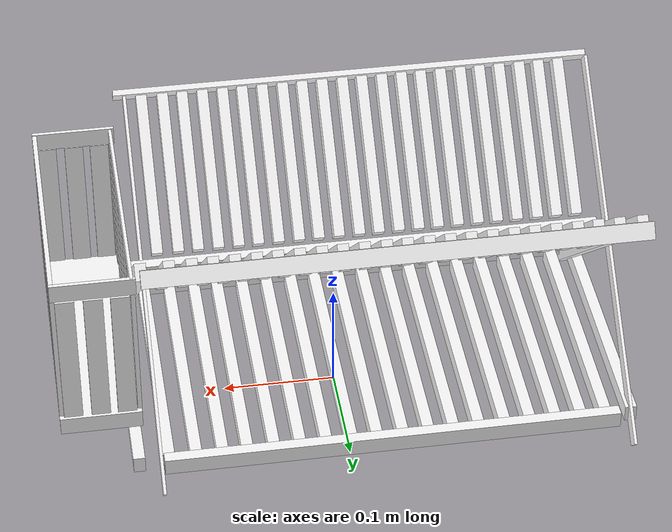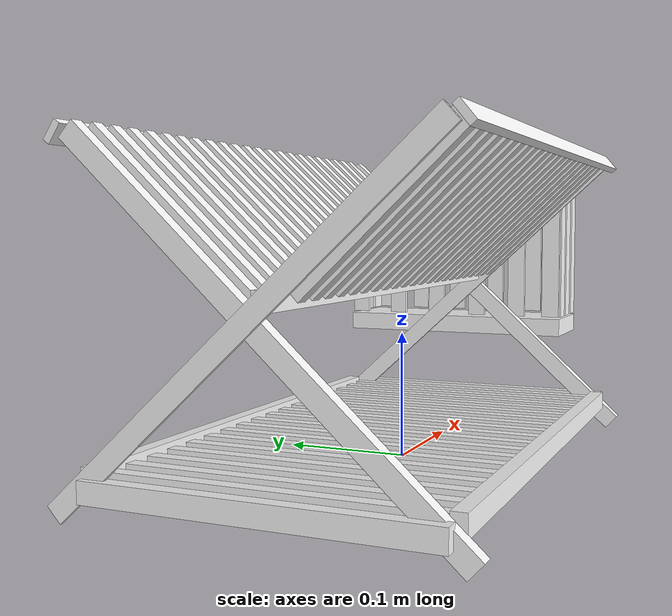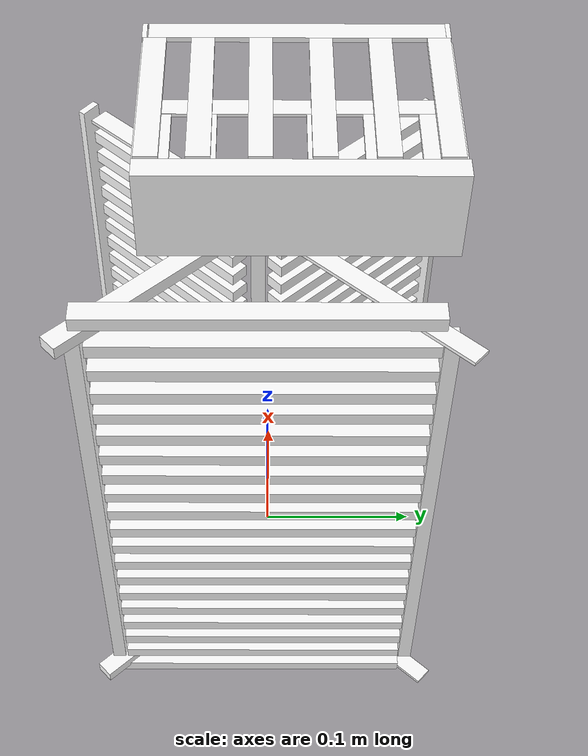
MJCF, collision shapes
<?xml version='1.0' encoding='utf-8'?>
<mujoco model="model">
  <option timestep="0.002" gravity="0.0 0.0 -9.81" />
  <compiler angle="radian" />
  <asset>
    <mesh file="visual/DishRack044.obj" name="DishRack044_vis" />
    <texture file="visual/T_BC001.png" name="DishRack044_material" type="2d" />
    <material name="DishRack044_material" rgba="1 1 1 1.0" texture="DishRack044_material" shininess="0.4472135901451111" specular="0.3103448502657381" />
  </asset>
  <default>
    <default class="visual">
      <geom conaffinity="0" contype="0" group="1" type="mesh" />
    </default>
    <default class="collision">
      <geom group="0" rgba="1 1 1 0.25" density="1.0" solref="0.004 1" solimp="0.998 0.998 0.001" />
    </default>
    <default class="spawn">
      <geom group="0" rgba="1 1 1 0.5" contype="0" conaffinity="0" />
      <site group="0" rgba="1 1 1 0.5" />
    </default>
    <default class="region">
      <geom group="1" conaffinity="0" contype="0" rgba="0 1 0 0" mass="0" />
    </default>
  </default>
  <worldbody>
    <body>
      <body name="object">
        <geom mesh="DishRack044_vis" type="mesh" solimp="0.998 0.998 0.001" solref="0.001 1" friction="0.95 0.3 0.1" class="visual" material="DishRack044_material" />
        <geom type="box" pos="0.21674208343029022 0.020170778036117554 0.0899287536740303" size="0.03468384966254234 0.10712028294801712 0.0080366600304842" quat="1.0 0.0 0.0 0.0" class="collision" />
        <geom type="box" pos="0.24941092729568481 0.02073955535888672 0.2324759066104889" size="0.001865640515461564 0.10354195535182953 0.008036660961806774" quat="1.0 0.0 0.0 0.0" class="collision" />
        <geom type="box" pos="0.18399125337600708 0.02073955535888672 0.2324759066104889" size="0.0013645136496052146 0.10354195535182953 0.008036714047193527" quat="1.0 0.0 0.0 0.0" class="collision" />
        <geom type="box" pos="0.21605472266674042 -0.08550913631916046 0.2324759066104889" size="0.03535652905702591 0.001713471137918532 0.008036663755774498" quat="1.0 0.0 0.0 0.0" class="collision" />
        <geom type="box" pos="0.21605472266674042 0.12384290993213654 0.2324759066104889" size="0.03535653278231621 0.001713471137918532 0.008036664687097073" quat="1.0 0.0 0.0 0.0" class="collision" />
        <geom type="box" pos="0.24962283670902252 0.03572848439216614 0.16209207475185394" size="0.0018656247993931174 0.008008716627955437 0.06200972571969032" quat="1.0 0.0 0.0 0.0" class="collision" />
        <geom type="box" pos="0.24962283670902252 0.07648012042045593 0.16209207475185394" size="0.0018656247993931174 0.008008717559278011 0.06200972571969032" quat="1.0 0.0 0.0 0.0" class="collision" />
        <geom type="box" pos="0.24962283670902252 -0.00533120334148407 0.16209207475185394" size="0.0018656247993931174 0.008008717559278011 0.06200972571969032" quat="1.0 0.0 0.0 0.0" class="collision" />
        <geom type="box" pos="0.24962285161018372 -0.0450209379196167 0.16209207475185394" size="0.0018656247993931174 0.008008718490600586 0.06200972571969032" quat="1.0 0.0 0.0 0.0" class="collision" />
        <geom type="box" pos="0.24962283670902252 -0.07819272577762604 0.16209207475185394" size="0.0018656247993931174 0.008008718490600586 0.06200972571969032" quat="1.0 0.0 0.0 0.0" class="collision" />
        <geom type="box" pos="0.24962283670902252 0.11693340539932251 0.16209207475185394" size="0.0018656247993931174 0.00800871942192316 0.06200972571969032" quat="1.0 0.0 0.0 0.0" class="collision" />
        <geom type="box" pos="0.18363423645496368 0.11693340539932251 0.16209207475185394" size="0.0018656247993931174 0.00800871942192316 0.06200972571969032" quat="1.0 0.0 0.0 0.0" class="collision" />
        <geom type="box" pos="0.18363423645496368 -0.07819272577762604 0.16209207475185394" size="0.0018656247993931174 0.008008720353245735 0.06200972571969032" quat="1.0 0.0 0.0 0.0" class="collision" />
        <geom type="box" pos="0.18363425135612488 -0.0450209379196167 0.16209207475185394" size="0.0018656247993931174 0.008008720353245735 0.06200972571969032" quat="1.0 0.0 0.0 0.0" class="collision" />
        <geom type="box" pos="0.18363423645496368 -0.00533120334148407 0.16209207475185394" size="0.0018656247993931174 0.00800872128456831 0.06200972571969032" quat="1.0 0.0 0.0 0.0" class="collision" />
        <geom type="box" pos="0.18363423645496368 0.07648012042045593 0.16209207475185394" size="0.0018656247993931174 0.008008722215890884 0.06200972571969032" quat="1.0 0.0 0.0 0.0" class="collision" />
        <geom type="box" pos="0.18363423645496368 0.035728469491004944 0.16209207475185394" size="0.0018656247993931174 0.008008722215890884 0.06200972571969032" quat="1.0 0.0 0.0 0.0" class="collision" />
        <geom type="box" pos="0.23964355885982513 0.12483306229114532 0.1617582142353058" size="0.008008738048374653 0.0018656229367479682 0.06200972571969032" quat="1.0 0.0 0.0 0.0" class="collision" />
        <geom type="box" pos="0.21635456383228302 0.12483306229114532 0.1617582142353058" size="0.008008738048374653 0.00186562305316329 0.06200972571969032" quat="1.0 0.0 0.0 0.0" class="collision" />
        <geom type="box" pos="0.194204643368721 0.12483304738998413 0.1617582142353058" size="0.008008738048374653 0.0018656231695786119 0.06200972571969032" quat="1.0 0.0 0.0 0.0" class="collision" />
        <geom type="box" pos="0.19420462846755981 -0.08563866466283798 0.1617582142353058" size="0.008008738048374653 0.0018656232859939337 0.06200972571969032" quat="1.0 0.0 0.0 0.0" class="collision" />
        <geom type="box" pos="0.21635454893112183 -0.08563865721225739 0.1617582142353058" size="0.008008738048374653 0.0018656234024092555 0.06200972571969032" quat="1.0 0.0 0.0 0.0" class="collision" />
        <geom type="box" pos="0.23964354395866394 -0.08563865721225739 0.1617582142353058" size="0.008008738048374653 0.0018656235188245773 0.06200972571969032" quat="1.0 0.0 0.0 0.0" class="collision" />
        <geom type="box" pos="0.1866154819726944 -0.006943985819816589 0.023152820765972137" size="0.005153138656169176 0.11970498412847519 0.007563452236354351" quat="1.0 0.0 0.0 0.0" class="collision" />
        <geom type="box" pos="0.16082458198070526 -0.003662288188934326 0.023152820765972137" size="0.005153130739927292 0.11511458456516266 0.007563453167676926" quat="1.0 0.0 0.0 0.0" class="collision" />
        <geom type="box" pos="0.13719917833805084 -0.003662288188934326 0.023152820765972137" size="0.005153131205588579 0.11511458456516266 0.0075634540989995" quat="1.0 0.0 0.0 0.0" class="collision" />
        <geom type="box" pos="0.11410646140575409 -0.003662288188934326 0.023152820765972137" size="0.005153131205588579 0.11511458456516266 0.007563455495983362" quat="1.0 0.0 0.0 0.0" class="collision" />
        <geom type="box" pos="0.09256322681903839 -0.003662288188934326 0.023152820765972137" size="0.0051531316712498665 0.11511458456516266 0.007563456427305937" quat="1.0 0.0 0.0 0.0" class="collision" />
        <geom type="box" pos="0.0691591277718544 -0.003662288188934326 0.023152820765972137" size="0.005153132136911154 0.11511458456516266 0.007563457824289799" quat="1.0 0.0 0.0 0.0" class="collision" />
        <geom type="box" pos="0.046234048902988434 -0.0036622919142246246 0.023152820765972137" size="0.005153132136911154 0.11511458456516266 0.007563458755612373" quat="1.0 0.0 0.0 0.0" class="collision" />
        <geom type="box" pos="0.023323524743318558 -0.003662293776869774 0.023152820765972137" size="0.005153132602572441 0.11511458456516266 0.007563459686934948" quat="1.0 0.0 0.0 0.0" class="collision" />
        <geom type="box" pos="0.000845862552523613 -0.0036622947081923485 0.023152820765972137" size="0.005153133068233728 0.11511458456516266 0.00756346108391881" quat="1.0 0.0 0.0 0.0" class="collision" />
        <geom type="box" pos="-0.021412163972854614 -0.003662295639514923 0.023152820765972137" size="0.005153133068233728 0.11511458456516266 0.0075634620152413845" quat="1.0 0.0 0.0 0.0" class="collision" />
        <geom type="box" pos="-0.04439590871334076 -0.003662295639514923 0.023152820765972137" size="0.005153133533895016 0.11511458456516266 0.007563463412225246" quat="1.0 0.0 0.0 0.0" class="collision" />
        <geom type="box" pos="-0.06703531742095947 -0.003662295639514923 0.023152820765972137" size="0.005153133999556303 0.11511458456516266 0.007563464343547821" quat="1.0 0.0 0.0 0.0" class="collision" />
        <geom type="box" pos="-0.08924049884080887 -0.003662295639514923 0.023152820765972137" size="0.005153133999556303 0.11511458456516266 0.007563465274870396" quat="1.0 0.0 0.0 0.0" class="collision" />
        <geom type="box" pos="-0.11184970289468765 -0.00366230309009552 0.023152820765972137" size="0.00515313446521759 0.11511458456516266 0.007563466671854258" quat="1.0 0.0 0.0 0.0" class="collision" />
        <geom type="box" pos="-0.13507486879825592 -0.00366230309009552 0.023152820765972137" size="0.005153134930878878 0.11511458456516266 0.007563467603176832" quat="1.0 0.0 0.0 0.0" class="collision" />
        <geom type="box" pos="-0.15762437880039215 -0.00366230309009552 0.023152820765972137" size="0.005153134930878878 0.11511458456516266 0.007563469000160694" quat="1.0 0.0 0.0 0.0" class="collision" />
        <geom type="box" pos="-0.18047143518924713 -0.00366230309009552 0.023152820765972137" size="0.005153135396540165 0.11511458456516266 0.007563469931483269" quat="1.0 0.0 0.0 0.0" class="collision" />
        <geom type="box" pos="-0.20324493944644928 -0.00366230309009552 0.023152820765972137" size="0.005153135862201452 0.11511458456516266 0.007563470862805843" quat="1.0 0.0 0.0 0.0" class="collision" />
        <geom type="box" pos="-0.22558985650539398 -0.00366230309009552 0.023152820765972137" size="0.005153135862201452 0.11511458456516266 0.007563472259789705" quat="1.0 0.0 0.0 0.0" class="collision" />
        <geom type="box" pos="-0.24883078038692474 -0.006944015622138977 0.023152820765972137" size="0.005153138656169176 0.11970498412847519 0.00756347319111228" quat="1.0 0.0 0.0 0.0" class="collision" />
        <geom type="box" pos="-0.2415536493062973 -0.00895756483078003 0.12469550967216492" size="0.007245653308928013 0.0047853500582277775 0.17615072429180145" quat="0.6470639705657959 -0.28514599800109863 0.28514599800109863 0.6470639705657959" class="collision" />
        <geom type="box" pos="0.17614787817001343 -0.00895756483078003 0.12469551712274551" size="0.007245653308928013 0.0047853500582277775 0.17615072429180145" quat="0.6470639705657959 -0.28514599800109863 0.28514599800109863 0.6470639705657959" class="collision" />
        <geom type="box" pos="-0.03596235811710358 0.11811350286006927 0.02669045329093933" size="0.20124584436416626 0.005277946125715971 0.007563477847725153" quat="1.0 0.0 0.0 0.0" class="collision" />
        <geom type="box" pos="-0.03596234321594238 -0.12659209966659546 0.02669045329093933" size="0.20124585926532745 0.005277946591377258 0.007563477847725153" quat="1.0 0.0 0.0 0.0" class="collision" />
        <geom type="box" pos="-0.24816888570785522 0.004572227597236633 0.12392526119947433" size="0.007245653308928013 0.0013795567210763693 0.17615072429180145" quat="0.6469011902809143 0.28551483154296875 -0.2855147421360016 0.6469014286994934" class="collision" />
        <geom type="box" pos="0.1676161140203476 0.004572227597236633 0.12392526865005493" size="0.007245653308928013 0.0013795567210763693 0.17615072429180145" quat="0.6469011902809143 0.28551483154296875 -0.2855147421360016 0.6469014286994934" class="collision" />
        <geom type="box" pos="-0.03075338900089264 -0.007197488099336624 0.14200377464294434" size="0.2076965868473053 0.0052779484540224075 0.006623576395213604" quat="1.0 0.0 0.0 0.0" class="collision" />
        <geom type="box" pos="-0.03596234321594238 -0.1321522295475006 0.24152934551239014" size="0.0025685287546366453 0.21308398246765137 0.007563476450741291" quat="0.665081262588501 -0.24013924598693848 0.2401391565799713 0.6650813817977905" class="collision" />
        <geom type="box" pos="-0.03596235811710358 0.12878257036209106 0.24182364344596863" size="0.0025685287546366453 0.21308398246765137 0.007563476916402578" quat="0.675204336643219 0.20999766886234283 -0.20999763906002045 0.6752044558525085" class="collision" />
        <geom type="box" pos="-0.22194913029670715 0.06300593912601471 0.19049030542373657" size="0.0072456528432667255 0.0047853500582277775 0.07928716391324997" quat="0.6470639705657959 -0.28514599800109863 0.28514599800109863 0.6470639705657959" class="collision" />
        <geom type="box" pos="-0.20394179224967957 0.06300593912601471 0.19049030542373657" size="0.0072456528432667255 0.0047853500582277775 0.07928716391324997" quat="0.6470639705657959 -0.28514599800109863 0.28514599800109863 0.6470639705657959" class="collision" />
        <geom type="box" pos="-0.1865517795085907 0.06300593912601471 0.19049030542373657" size="0.0072456528432667255 0.0047853500582277775 0.07928716391324997" quat="0.6470639705657959 -0.28514599800109863 0.28514599800109863 0.6470639705657959" class="collision" />
        <geom type="box" pos="-0.13290707767009735 0.06300593912601471 0.19049030542373657" size="0.0072456528432667255 0.0047853500582277775 0.07928716391324997" quat="0.6470639705657959 -0.28514599800109863 0.28514599800109863 0.6470639705657959" class="collision" />
        <geom type="box" pos="-0.15029709041118622 0.06300593912601471 0.19049030542373657" size="0.0072456528432667255 0.0047853500582277775 0.07928716391324997" quat="0.6470639705657959 -0.28514599800109863 0.28514599800109863 0.6470639705657959" class="collision" />
        <geom type="box" pos="-0.16830439865589142 0.06300593912601471 0.19049030542373657" size="0.0072456528432667255 0.0047853500582277775 0.07928716391324997" quat="0.6470639705657959 -0.28514599800109863 0.28514599800109863 0.6470639705657959" class="collision" />
        <geom type="box" pos="-0.11490389704704285 0.06300593912601471 0.19049030542373657" size="0.0072456528432667255 0.0047853500582277775 0.07928716391324997" quat="0.6470639705657959 -0.28514599800109863 0.28514599800109863 0.6470639705657959" class="collision" />
        <geom type="box" pos="-0.09689658880233765 0.06300593912601471 0.19049030542373657" size="0.0072456528432667255 0.0047853500582277775 0.07928716391324997" quat="0.6470639705657959 -0.28514599800109863 0.28514599800109863 0.6470639705657959" class="collision" />
        <geom type="box" pos="-0.07950657606124878 0.0630059465765953 0.19049030542373657" size="0.0072456528432667255 0.0047853500582277775 0.07928716391324997" quat="0.6470639705657959 -0.28514599800109863 0.28514599800109863 0.6470639705657959" class="collision" />
        <geom type="box" pos="-0.02646598219871521 0.0630059465765953 0.19049030542373657" size="0.0072456528432667255 0.0047853500582277775 0.07928716391324997" quat="0.6470639705657959 -0.28514599800109863 0.28514599800109863 0.6470639705657959" class="collision" />
        <geom type="box" pos="-0.04385598003864288 0.0630059465765953 0.19049030542373657" size="0.0072456528432667255 0.0047853500582277775 0.07928716391324997" quat="0.6470639705657959 -0.28514599800109863 0.28514599800109863 0.6470639705657959" class="collision" />
        <geom type="box" pos="-0.06186330318450928 0.0630059465765953 0.19049030542373657" size="0.0072456528432667255 0.0047853500582277775 0.07928716391324997" quat="0.6470639705657959 -0.28514599800109863 0.28514599800109863 0.6470639705657959" class="collision" />
        <geom type="box" pos="-0.00822131335735321 0.0630059465765953 0.19049030542373657" size="0.0072456528432667255 0.0047853500582277775 0.07928716391324997" quat="0.6470639705657959 -0.28514599800109863 0.28514599800109863 0.6470639705657959" class="collision" />
        <geom type="box" pos="0.009786009788513184 0.06300593912601471 0.19049030542373657" size="0.0072456528432667255 0.0047853500582277775 0.07928716391324997" quat="0.6470639705657959 -0.28514599800109863 0.28514599800109863 0.6470639705657959" class="collision" />
        <geom type="box" pos="0.027176007628440857 0.06300593912601471 0.19049030542373657" size="0.0072456528432667255 0.0047853500582277775 0.07928716391324997" quat="0.6470639705657959 -0.28514599800109863 0.28514599800109863 0.6470639705657959" class="collision" />
        <geom type="box" pos="0.08074235916137695 0.0630059465765953 0.19049030542373657" size="0.0072456528432667255 0.0047853500582277775 0.07928716391324997" quat="0.6470639705657959 -0.28514599800109863 0.28514599800109863 0.6470639705657959" class="collision" />
        <geom type="box" pos="0.06335236132144928 0.0630059465765953 0.19049030542373657" size="0.0072456528432667255 0.0047853500582277775 0.07928716391324997" quat="0.6470639705657959 -0.28514599800109863 0.28514599800109863 0.6470639705657959" class="collision" />
        <geom type="box" pos="0.04534503445029259 0.0630059465765953 0.19049030542373657" size="0.0072456528432667255 0.0047853500582277775 0.07928716391324997" quat="0.6470639705657959 -0.28514599800109863 0.28514599800109863 0.6470639705657959" class="collision" />
        <geom type="box" pos="0.09865473955869675 0.0630059540271759 0.19049030542373657" size="0.0072456528432667255 0.0047853500582277775 0.07928716391324997" quat="0.6470639705657959 -0.28514599800109863 0.28514599800109863 0.6470639705657959" class="collision" />
        <geom type="box" pos="0.11666206270456314 0.0630059540271759 0.19049030542373657" size="0.0072456528432667255 0.0047853500582277775 0.07928716391324997" quat="0.6470639705657959 -0.28514599800109863 0.28514599800109863 0.6470639705657959" class="collision" />
        <geom type="box" pos="0.13405205309391022 0.0630059540271759 0.19049030542373657" size="0.0072456528432667255 0.0047853500582277775 0.07928716391324997" quat="0.6470639705657959 -0.28514599800109863 0.28514599800109863 0.6470639705657959" class="collision" />
        <geom type="box" pos="0.1527896672487259 0.0630059540271759 0.19049030542373657" size="0.0072456528432667255 0.0047853500582277775 0.07928716391324997" quat="0.6470639705657959 -0.28514599800109863 0.28514599800109863 0.6470639705657959" class="collision" />
        <geom type="box" pos="0.1527896523475647 -0.07255498319864273 0.1947324275970459" size="0.0072456537745893 0.0047853500582277775 0.07081423699855804" quat="0.648720383644104 0.2813572287559509 -0.28135716915130615 0.648720383644104" class="collision" />
        <geom type="box" pos="0.1340520679950714 -0.07255498319864273 0.1947324275970459" size="0.0072456537745893 0.0047853500582277775 0.07081423699855804" quat="0.648720383644104 0.2813572287559509 -0.28135716915130615 0.648720383644104" class="collision" />
        <geom type="box" pos="0.11666204780340195 -0.07255498319864273 0.1947324275970459" size="0.0072456537745893 0.0047853500582277775 0.07081423699855804" quat="0.648720383644104 0.2813572287559509 -0.28135716915130615 0.648720383644104" class="collision" />
        <geom type="box" pos="0.09865473955869675 -0.07255498319864273 0.1947324275970459" size="0.0072456537745893 0.0047853500582277775 0.07081423699855804" quat="0.648720383644104 0.2813572287559509 -0.28135716915130615 0.648720383644104" class="collision" />
        <geom type="box" pos="0.04534504562616348 -0.07255499064922333 0.1947324275970459" size="0.0072456537745893 0.0047853500582277775 0.07081423699855804" quat="0.648720383644104 0.2813572287559509 -0.28135716915130615 0.648720383644104" class="collision" />
        <geom type="box" pos="0.06335236877202988 -0.07255499064922333 0.1947324275970459" size="0.0072456537745893 0.0047853500582277775 0.07081423699855804" quat="0.648720383644104 0.2813572287559509 -0.28135716915130615 0.648720383644104" class="collision" />
        <geom type="box" pos="0.08074235171079636 -0.07255499064922333 0.1947324275970459" size="0.0072456537745893 0.0047853500582277775 0.07081423699855804" quat="0.648720383644104 0.2813572287559509 -0.28135716915130615 0.648720383644104" class="collision" />
        <geom type="box" pos="0.027176015079021454 -0.07255499064922333 0.1947324275970459" size="0.0072456537745893 0.0047853500582277775 0.07081423699855804" quat="0.648720383644104 0.2813572287559509 -0.28135716915130615 0.648720383644104" class="collision" />
        <geom type="box" pos="0.009786009788513184 -0.07255499064922333 0.1947324275970459" size="0.0072456537745893 0.0047853500582277775 0.07081423699855804" quat="0.648720383644104 0.2813572287559509 -0.28135716915130615 0.648720383644104" class="collision" />
        <geom type="box" pos="-0.008221309632062912 -0.07255499064922333 0.1947324275970459" size="0.0072456537745893 0.0047853500582277775 0.07081423699855804" quat="0.648720383644104 0.2813572287559509 -0.28135716915130615 0.648720383644104" class="collision" />
        <geom type="box" pos="-0.06186329945921898 -0.07255498319864273 0.1947324275970459" size="0.0072456537745893 0.0047853500582277775 0.07081423699855804" quat="0.648720383644104 0.2813572287559509 -0.28135716915130615 0.648720383644104" class="collision" />
        <geom type="box" pos="-0.043855976313352585 -0.07255499064922333 0.1947324275970459" size="0.0072456537745893 0.0047853500582277775 0.07081423699855804" quat="0.648720383644104 0.2813572287559509 -0.28135716915130615 0.648720383644104" class="collision" />
        <geom type="box" pos="-0.02646597847342491 -0.07255499064922333 0.1947324275970459" size="0.0072456537745893 0.0047853500582277775 0.07081423699855804" quat="0.648720383644104 0.2813572287559509 -0.28135716915130615 0.648720383644104" class="collision" />
        <geom type="box" pos="-0.07950658351182938 -0.07255499064922333 0.1947324275970459" size="0.0072456537745893 0.0047853500582277775 0.07081423699855804" quat="0.648720383644104 0.2813572287559509 -0.28135716915130615 0.648720383644104" class="collision" />
        <geom type="box" pos="-0.09689658135175705 -0.07255499064922333 0.1947324275970459" size="0.0072456537745893 0.0047853500582277775 0.07081423699855804" quat="0.648720383644104 0.2813572287559509 -0.28135716915130615 0.648720383644104" class="collision" />
        <geom type="box" pos="-0.11490390449762344 -0.07255500555038452 0.1947324275970459" size="0.0072456537745893 0.0047853500582277775 0.07081423699855804" quat="0.648720383644104 0.2813572287559509 -0.28135716915130615 0.648720383644104" class="collision" />
        <geom type="box" pos="-0.1683044284582138 -0.07255500555038452 0.1947324275970459" size="0.0072456537745893 0.0047853500582277775 0.07081423699855804" quat="0.648720383644104 0.2813572287559509 -0.28135716915130615 0.648720383644104" class="collision" />
        <geom type="box" pos="-0.15029709041118622 -0.07255500555038452 0.1947324275970459" size="0.0072456537745893 0.0047853500582277775 0.07081423699855804" quat="0.648720383644104 0.2813572287559509 -0.28135716915130615 0.648720383644104" class="collision" />
        <geom type="box" pos="-0.13290707767009735 -0.07255499064922333 0.1947324275970459" size="0.0072456537745893 0.0047853500582277775 0.07081423699855804" quat="0.648720383644104 0.2813572287559509 -0.28135716915130615 0.648720383644104" class="collision" />
        <geom type="box" pos="-0.1865517944097519 -0.07255500555038452 0.1947324275970459" size="0.0072456537745893 0.0047853500582277775 0.07081423699855804" quat="0.648720383644104 0.2813572287559509 -0.28135716915130615 0.648720383644104" class="collision" />
        <geom type="box" pos="-0.20394179224967957 -0.07255500555038452 0.1947324275970459" size="0.0072456537745893 0.0047853500582277775 0.07081423699855804" quat="0.648720383644104 0.2813572287559509 -0.28135716915130615 0.648720383644104" class="collision" />
        <geom type="box" pos="-0.22194910049438477 -0.07255500555038452 0.1947324275970459" size="0.0072456537745893 0.0047853500582277775 0.07081423699855804" quat="0.648720383644104 0.2813572287559509 -0.28135716915130615 0.648720383644104" class="collision" />
        <geom class="region" name="reg_int_0" type="box" pos="-0.03552863001823425 -0.0032557323575019836 0.08269531279802322" size="0.1984570006132126 0.12453754788637161 0.046705176889896394" />
        <geom class="region" name="reg_int_1" type="box" pos="-0.03460189700126648 -0.0009813010692596436 0.3003529980778694" size="0.21231207048892975 0.051091832876205445 0.10852993077039719" />
        <geom size="0.25514496 0.14579712 0.12878745" pos="-0.0 -0.0 0.0" name="reg_bbox" class="region" type="box" quat="1.0 0.0 0.0 0.0" />
        </body>
    </body>
  </worldbody>
  <actuator />
</mujoco>
